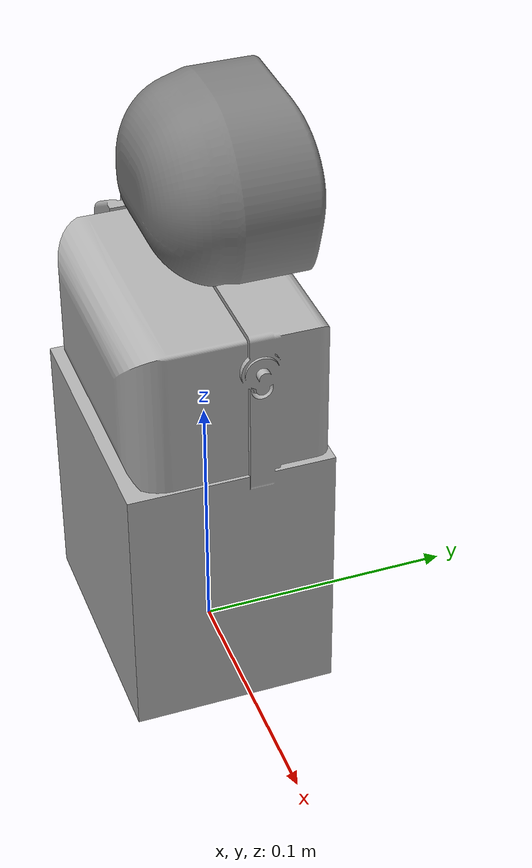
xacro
<?xml version="1.0" ?>
<robot name="antronyx_arm" xmlns:xacro="http://www.ros.org/wiki/xacro">

<xacro:include filename="$(find antronyx_arm_description)/urdf/materials.xacro" />
<xacro:include filename="$(find antronyx_arm_description)/urdf/antronyx_arm.trans" />
<xacro:include filename="$(find antronyx_arm_description)/urdf/antronyx_arm.gazebo" />

<!--EXTRA-->
<link name="dummy">
   </link>

<link name="base_link">
  <inertial>
    <origin xyz="-0.0011390026436267657 -0.005986011045646393 0.07625058308932678" rpy="0 0 0"/>
    <mass value="1.2433514231817175"/>
    <inertia ixx="0.003209" iyy="0.003633" izz="0.001672" ixy="-0.0" iyz="6e-06" ixz="-1e-06"/>
  </inertial>
  <visual>
    <origin xyz="0 0 0" rpy="0 0 0"/>
    <geometry>
      <mesh filename="package://antronyx_arm_description/meshes/base_link.stl" scale="0.001 0.001 0.001"/>
    </geometry>
    <material name="silver"/>
  </visual>
  <collision>
    <origin xyz="0 0 0" rpy="0 0 0"/>
    <geometry>
      <mesh filename="package://antronyx_arm_description/meshes/base_link.stl" scale="0.001 0.001 0.001"/>
    </geometry>
  </collision>
</link>

<link name="hand_1">
  <inertial>
    <origin xyz="-0.001045412794791284 -0.021699059315876748 -0.02883508917135298" rpy="0 0 0"/>
    <mass value="0.01382033191990982"/>
    <inertia ixx="7e-06" iyy="5e-06" izz="4e-06" ixy="-0.0" iyz="0.0" ixz="-0.0"/>
  </inertial>
  <visual>
    <origin xyz="0.074206 -0.026685 -0.099251" rpy="0 0 0"/>
    <geometry>
      <mesh filename="package://antronyx_arm_description/meshes/hand_1.stl" scale="0.001 0.001 0.001"/>
    </geometry>
    <material name="silver"/>
  </visual>
  <collision>
    <origin xyz="0.074206 -0.026685 -0.099251" rpy="0 0 0"/>
    <geometry>
      <mesh filename="package://antronyx_arm_description/meshes/hand_1.stl" scale="0.001 0.001 0.001"/>
    </geometry>
  </collision>
</link>

<link name="arm_1">
  <inertial>
    <origin xyz="-0.00017688640786213405 -0.019161536827441393 -0.021965942883675885" rpy="0 0 0"/>
    <mass value="0.027106484822457942"/>
    <inertia ixx="1.2e-05" iyy="1e-05" izz="2e-06" ixy="0.0" iyz="-0.0" ixz="0.0"/>
  </inertial>
  <visual>
    <origin xyz="0.074206 -0.026685 -0.143251" rpy="0 0 0"/>
    <geometry>
      <mesh filename="package://antronyx_arm_description/meshes/arm_1.stl" scale="0.001 0.001 0.001"/>
    </geometry>
    <material name="silver"/>
  </visual>
  <collision>
    <origin xyz="0.074206 -0.026685 -0.143251" rpy="0 0 0"/>
    <geometry>
      <mesh filename="package://antronyx_arm_description/meshes/arm_1.stl" scale="0.001 0.001 0.001"/>
    </geometry>
  </collision>
</link>

<link name="shoulder_1">
  <inertial>
    <origin xyz="-0.003678680754194058 -0.0005910553922383382 -0.00040380047547597386" rpy="0 0 0"/>
    <mass value="0.008294533550909644"/>
    <inertia ixx="2e-06" iyy="1e-06" izz="2e-06" ixy="-0.0" iyz="0.0" ixz="-0.0"/>
  </inertial>
  <visual>
    <origin xyz="0.056111 -0.004981 -0.148751" rpy="0 0 0"/>
    <geometry>
      <mesh filename="package://antronyx_arm_description/meshes/shoulder_1.stl" scale="0.001 0.001 0.001"/>
    </geometry>
    <material name="silver"/>
  </visual>
  <collision>
    <origin xyz="0.056111 -0.004981 -0.148751" rpy="0 0 0"/>
    <geometry>
      <mesh filename="package://antronyx_arm_description/meshes/shoulder_1.stl" scale="0.001 0.001 0.001"/>
    </geometry>
  </collision>
</link>

<link name="head_1">
  <inertial>
    <origin xyz="0.00014211200951306873 0.005102832781723643 0.03090280065498746" rpy="0 0 0"/>
    <mass value="0.21430657847269097"/>
    <inertia ixx="0.000144" iyy="0.000203" izz="0.000187" ixy="0.0" iyz="1e-06" ixz="0.0"/>
  </inertial>
  <visual>
    <origin xyz="0.001147 -0.004981 -0.167791" rpy="0 0 0"/>
    <geometry>
      <mesh filename="package://antronyx_arm_description/meshes/head_1.stl" scale="0.001 0.001 0.001"/>
    </geometry>
    <material name="grey"/>
  </visual>
  <collision>
    <origin xyz="0.001147 -0.004981 -0.167791" rpy="0 0 0"/>
    <geometry>
      <mesh filename="package://antronyx_arm_description/meshes/head_1.stl" scale="0.001 0.001 0.001"/>
    </geometry>
  </collision>
</link>

<joint name="hand_joint" type="continuous">
  <origin xyz="0.0 0.0 -0.044" rpy="0 0 0"/>
  <parent link="arm_1"/>
  <child link="hand_1"/>
  <axis xyz="-0.0 1.0 0.0"/>
</joint>

<joint name="arm_joint" type="continuous">
  <origin xyz="-0.018095 0.021704 -0.0055" rpy="0 0 0"/>
  <parent link="shoulder_1"/>
  <child link="arm_1"/>
  <axis xyz="0.0 -1.0 -0.0"/>
</joint>

<joint name="sh_joint" type="continuous">
  <origin xyz="-0.056111 0.004981 0.148751" rpy="0 0 0"/>
  <parent link="base_link"/>
  <child link="shoulder_1"/>
  <axis xyz="-1.0 0.0 0.0"/>
</joint>

<joint name="head_joint" type="continuous">
  <origin xyz="-0.001147 0.004981 0.167791" rpy="0 0 0"/>
  <parent link="base_link"/>
  <child link="head_1"/>
  <axis xyz="0.0 -0.0 1.0"/>
</joint>

<!---EXTRA-->
  <joint name="dummy_joint" type="fixed">
     <parent link="dummy"/>
     <child link="base_link"/>
   </joint>

</robot>

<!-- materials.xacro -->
<robot name="antronyx_arm" xmlns:xacro="http://www.ros.org/wiki/xacro" >

<material name="silver">
  <color rgba="0.700 0.700 0.700 1.000"/>
</material>
<material name="grey">
  <color rgba="0.500 0.500 0.500 1.000"/>
</material>
</robot>

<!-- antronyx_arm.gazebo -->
<robot name="antronyx_arm" xmlns:xacro="http://www.ros.org/wiki/xacro" >

<xacro:property name="body_color" value="Gazebo/Silver" />

<gazebo>
  <plugin name="control" filename="libgazebo_ros_control.so"/>
</gazebo>
<gazebo reference="base_link">
  <material>${body_color}</material>
  <mu1>0.2</mu1>
  <mu2>0.2</mu2>
  <selfCollide>true</selfCollide>
  <gravity>true</gravity>
</gazebo>

<gazebo reference="hand_1">
  <material>${body_color}</material>
  <mu1>0.2</mu1>
  <mu2>0.2</mu2>
  <selfCollide>true</selfCollide>
</gazebo>

<gazebo reference="arm_1">
  <material>${body_color}</material>
  <mu1>0.2</mu1>
  <mu2>0.2</mu2>
  <selfCollide>true</selfCollide>
</gazebo>

<gazebo reference="shoulder_1">
  <material>${body_color}</material>
  <mu1>0.2</mu1>
  <mu2>0.2</mu2>
  <selfCollide>true</selfCollide>
</gazebo>

<gazebo reference="head_1">
  <material>${body_color}</material>
  <mu1>0.2</mu1>
  <mu2>0.2</mu2>
  <selfCollide>true</selfCollide>
</gazebo>

</robot>
